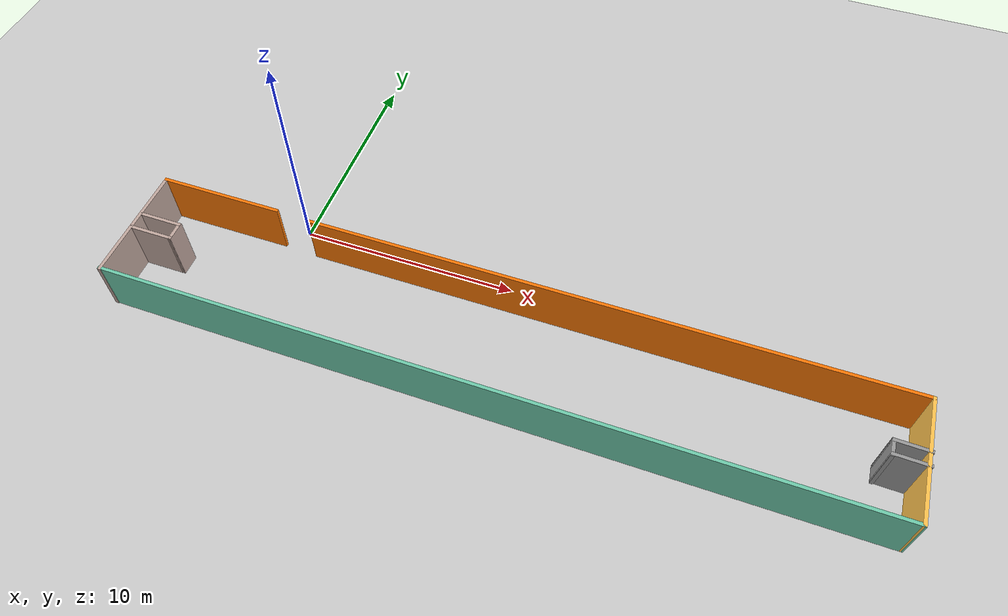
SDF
<sdf version="1.6">
 <world name="default">
  <light name="sun" type="directional">
   <pose>0 0 10 0 -0 0</pose>
   <diffuse>0.8 0.8 0.8 1</diffuse>
   <specular>0.2 0.2 0.2 1</specular>
   <attenuation>
    <range>1000</range>
    <constant>0.9</constant>
    <linear>0.01</linear>
    <quadratic>0.001</quadratic>
   </attenuation>
   <direction>-0.5 0.1 -0.9</direction>
  </light>
  <model name="ground_plane">
   <static>1</static>
   <link name="link">
    <collision name="collision">
     <geometry><plane><normal>0 0 1</normal><size>100 100</size></plane></geometry>
     <surface>
      <contact><collide_bitmask>65535</collide_bitmask></contact>
      <friction><ode><mu>100</mu><mu2>50</mu2></ode></friction>
     </surface>
    </collision>
    <visual name="visual">
     <cast_shadows>0</cast_shadows>
     <geometry><plane><normal>0 0 1</normal><size>100 100</size></plane></geometry>
     <material>
      <script><uri>file://media/materials/scripts/gazebo.material</uri><name>Gazebo/Grey</name></script>
     </material>
    </visual>
   </link>
  </model>
  <gravity>0 0 -9.8</gravity>
  <magnetic_field>6e-06 2.3e-05 -4.2e-05</magnetic_field>
  <atmosphere type="adiabatic"/>
  <physics name="default_physics" default="0" type="ode">
   <max_step_size>0.001</max_step_size>
   <real_time_factor>1</real_time_factor>
   <real_time_update_rate>1000</real_time_update_rate>
  </physics>
  <scene><ambient>0.4 0.4 0.4 1</ambient><background>0.7 0.7 0.7 1</background><shadows>1</shadows></scene>
  <audio><device>default</device></audio>
  <spherical_coordinates>
   <surface_model>EARTH_WGS84</surface_model>
   <latitude_deg>0</latitude_deg>
   <longitude_deg>0</longitude_deg>
   <elevation>0</elevation>
   <heading_deg>0</heading_deg>
  </spherical_coordinates>
  <model name="sim">
   <pose>10.5975 -3.65916 0 0 -0 0</pose>
   <link name="Wall_10">
    <collision name="Wall_10_Collision">
     <geometry><box><size>5.5 0.15 2.5</size></box></geometry>
     <pose>0 0 1.25 0 -0 0</pose>
    </collision>
    <visual name="Wall_10_Visual">
     <pose>0 0 1.25 0 -0 0</pose>
     <geometry><box><size>5.5 0.15 2.5</size></box></geometry>
     <material>
      <script><uri>file://media/materials/scripts/gazebo.material</uri><name>Gazebo/Grey</name></script>
      <ambient>0.760784 0.662745 0.627451 1</ambient>
     </material>
     <meta><layer>0</layer></meta>
    </visual>
    <pose>-16.963 0.038446 0 0 -0 -1.5708</pose>
   </link>
   <link name="Wall_12">
    <collision name="Wall_12_Collision">
     <geometry><box><size>5.5 0.15 2.5</size></box></geometry>
     <pose>0 0 1.25 0 -0 0</pose>
    </collision>
    <visual name="Wall_12_Visual">
     <pose>0 0 1.25 0 -0 0</pose>
     <geometry><box><size>5.5 0.15 2.5</size></box></geometry>
     <material>
      <script><uri>file://media/materials/scripts/gazebo.material</uri><name>Gazebo/Grey</name></script>
      <ambient>1 0.764706 0.305882 1</ambient>
     </material>
     <meta><layer>0</layer></meta>
    </visual>
    <pose>16.9292 -0.038221 0 0 -0 -1.5708</pose>
   </link>
   <link name="Wall_15">
    <collision name="Wall_15_Collision">
     <geometry><box><size>2 0.15 2.5</size></box></geometry>
     <pose>0 0 1.25 0 -0 0</pose>
    </collision>
    <visual name="Wall_15_Visual">
     <pose>0 0 1.25 0 -0 0</pose>
     <geometry><box><size>2 0.15 2.5</size></box></geometry>
     <material>
      <script><uri>file://media/materials/scripts/gazebo.material</uri><name>Gazebo/Grey</name></script>
      <ambient>0.760784 0.662745 0.627451 1</ambient>
     </material>
     <meta><layer>0</layer></meta>
    </visual>
    <pose>-15.9547 0.568453 0 0 -0 0</pose>
   </link>
   <link name="Wall_18">
    <collision name="Wall_18_Collision">
     <geometry><box><size>2.07812 0.15 2.5</size></box></geometry>
     <pose>0 0 1.25 0 -0 0</pose>
    </collision>
    <visual name="Wall_18_Visual">
     <pose>0 0 1.25 0 -0 0</pose>
     <geometry><box><size>2.07812 0.15 2.5</size></box></geometry>
     <material>
      <script><uri>file://media/materials/scripts/gazebo.material</uri><name>Gazebo/Grey</name></script>
      <ambient>0.760784 0.662745 0.627451 1</ambient>
     </material>
     <meta><layer>0</layer></meta>
    </visual>
    <pose>-15.986 -0.219047 0 0 -0 0</pose>
   </link>
   <link name="Wall_19">
    <collision name="Wall_19_Collision">
     <geometry><box><size>0.945351 0.15 2.5</size></box></geometry>
     <pose>0 0 1.25 0 -0 0</pose>
    </collision>
    <visual name="Wall_19_Visual">
     <pose>0 0 1.25 0 -0 0</pose>
     <geometry><box><size>0.945351 0.15 2.5</size></box></geometry>
     <material>
      <script><uri>file://media/materials/scripts/gazebo.material</uri><name>Gazebo/Grey</name></script>
      <ambient>0.760784 0.662745 0.627451 1</ambient>
     </material>
     <meta><layer>0</layer></meta>
    </visual>
    <pose>-15.018 0.178609 0 0 -0 1.58062</pose>
   </link>
   <link name="Wall_21">
    <collision name="Wall_21_Collision">
     <geometry><box><size>1.5364 0.15 2.5</size></box></geometry>
     <pose>0 0 1.25 0 -0 0</pose>
    </collision>
    <visual name="Wall_21_Visual">
     <pose>0 0 1.25 0 -0 0</pose>
     <geometry><box><size>1.5364 0.15 2.5</size></box></geometry>
     <material>
      <script><uri>file://media/materials/scripts/gazebo.material</uri><name>Gazebo/Grey</name></script>
      <ambient>1 1 1 1</ambient>
     </material>
     <meta><layer>0</layer></meta>
    </visual>
    <pose>16.2938 0.302386 0 0 -0 3.11567</pose>
   </link>
   <link name="Wall_24">
    <collision name="Wall_24_Collision">
     <geometry><box><size>0.75 0.15 2.5</size></box></geometry>
     <pose>0 0 1.25 0 -0 0</pose>
    </collision>
    <visual name="Wall_24_Visual">
     <pose>0 0 1.25 0 -0 0</pose>
     <geometry><box><size>0.75 0.15 2.5</size></box></geometry>
     <material>
      <script><uri>file://media/materials/scripts/gazebo.material</uri><name>Gazebo/Grey</name></script>
      <ambient>1 1 1 1</ambient>
     </material>
     <meta><layer>0</layer></meta>
    </visual>
    <pose>15.6009 -0.015582 0 0 -0 -1.5708</pose>
   </link>
   <link name="Wall_26">
    <collision name="Wall_26_Collision">
     <geometry><box><size>1.5364 0.15 2.5</size></box></geometry>
     <pose>0 0 1.25 0 -0 0</pose>
    </collision>
    <visual name="Wall_26_Visual">
     <pose>0 0 1.25 0 -0 0</pose>
     <geometry><box><size>1.5364 0.15 2.5</size></box></geometry>
     <material>
      <script><uri>file://media/materials/scripts/gazebo.material</uri><name>Gazebo/Grey</name></script>
      <ambient>1 1 1 1</ambient>
     </material>
     <meta><layer>0</layer></meta>
    </visual>
    <pose>16.2938 -0.297614 0 0 -0 -0.025924</pose>
   </link>
   <link name="Wall_29">
    <collision name="Wall_29_Collision">
     <geometry><box><size>26.75 0.15 2.5</size></box></geometry>
     <pose>0 0 1.25 0 -0 0</pose>
    </collision>
    <visual name="Wall_29_Visual">
     <pose>0 0 1.25 0 -0 0</pose>
     <geometry><box><size>26.75 0.15 2.5</size></box></geometry>
     <material>
      <script><uri>file://media/materials/scripts/gazebo.material</uri><name>Gazebo/Grey</name></script>
      <ambient>0.996078 0.47451 0.0196078 1</ambient>
     </material>
     <meta><layer>0</layer></meta>
    </visual>
    <pose>3.62922 2.63678 0 0 -0 0</pose>
   </link>
   <link name="Wall_32">
    <collision name="Wall_32_Collision">
     <geometry><box><size>5.75 0.15 2.5</size></box></geometry>
     <pose>0 0 1.25 0 -0 0</pose>
    </collision>
    <visual name="Wall_32_Visual">
     <pose>0 0 1.25 0 -0 0</pose>
     <geometry><box><size>5.75 0.15 2.5</size></box></geometry>
     <material>
      <script><uri>file://media/materials/scripts/gazebo.material</uri><name>Gazebo/Grey</name></script>
      <ambient>0.996078 0.47451 0.0196078 1</ambient>
     </material>
     <meta><layer>0</layer></meta>
    </visual>
    <pose>-14.163 2.71345 0 0 -0 0</pose>
   </link>
   <link name="Wall_6">
    <collision name="Wall_6_Collision">
     <geometry><box><size>34.0678 0.15 2.5</size></box></geometry>
     <pose>0 0 1.25 0 -0 0</pose>
    </collision>
    <visual name="Wall_6_Visual">
     <pose>0 0 1.25 0 -0 0</pose>
     <geometry><box><size>34.0678 0.15 2.5</size></box></geometry>
     <material>
      <script><uri>file://media/materials/scripts/gazebo.material</uri><name>Gazebo/Grey</name></script>
      <ambient>0.435294 0.796078 0.67451 1</ambient>
     </material>
     <meta><layer>0</layer></meta>
    </visual>
    <pose>-0.029665 -2.66211 0 0 -0 -0.003014</pose>
   </link>
   <static>1</static>
  </model>
 </world>
</sdf>
